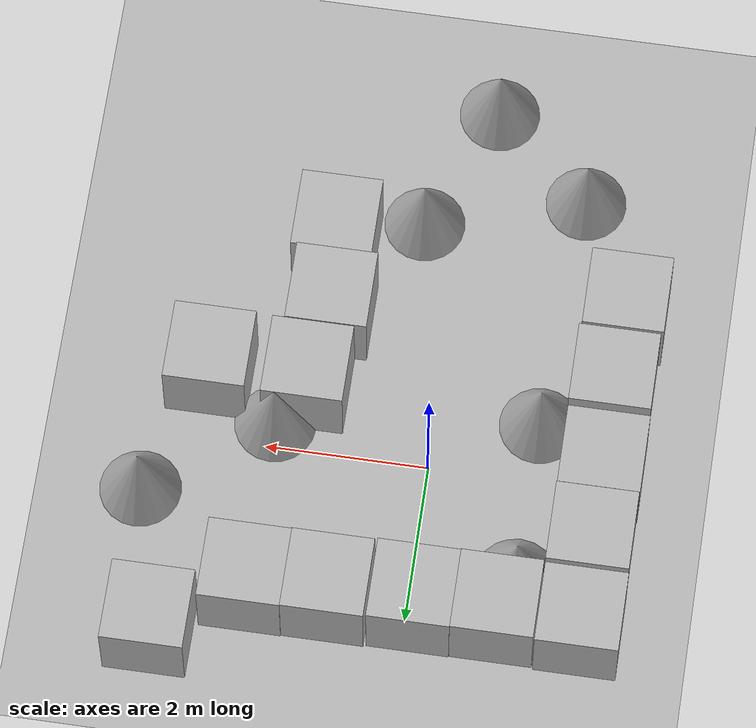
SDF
<sdf version="1.10">
 <world name="empty">
  <physics name="1ms" type="ignored">
   <max_step_size>0.001</max_step_size>
   <real_time_factor>1</real_time_factor>
   <real_time_update_rate>1000</real_time_update_rate>
  </physics>
  <gravity>0 0 -9.8000000000000007</gravity>
  <scene>
   <ambient>0.400000006 0.400000006 0.400000006 1</ambient>
   <background>0.699999988 0.699999988 0.699999988 1</background>
   <shadows>true</shadows>
  </scene>
  <magnetic_field>5.5644999999999998e-06 2.2875799999999999e-05 -4.2388400000000002e-05</magnetic_field>
  <atmosphere type="adiabatic"/>
  <model name="ground_plane">
   <static>true</static>
   <link name="link">
    <collision name="collision">
     <geometry><plane><normal>0 0 1</normal><size>100 100</size></plane></geometry>
     <surface><friction><ode><mu>100</mu><mu2>50</mu2></ode></friction></surface>
    </collision>
    <visual name="visual">
     <cast_shadows>false</cast_shadows>
     <geometry><plane><normal>0 0 1</normal><size>100 100</size></plane></geometry>
     <material>
      <ambient>0.300000012 0.300000012 0.300000012 1</ambient>
      <diffuse>0.699999988 0.699999988 0.699999988 1</diffuse>
      <specular>0.00999999978 0.00999999978 0.00999999978 1</specular>
     </material>
    </visual>
    <inertial>
     <mass>1</mass>
     <inertia><ixx>1</ixx><ixy>0</ixy><ixz>0</ixz><iyy>1</iyy><iyz>0</iyz><izz>1</izz></inertia>
    </inertial>
   </link>
  </model>
  <model name="box">
   <pose>1.9470620416377047 1.9083977872669315 0.49999999019526092 -7.6748563532494908e-13 1.957978881315056e-08 -2.7964924233082882e-08</pose>
   <link name="box_link">
    <inertial>
     <inertia><ixx>0.16666</ixx><ixy>0</ixy><ixz>0</ixz><iyy>0.16666</iyy><iyz>0</iyz><izz>0.16666</izz></inertia>
     <mass>1</mass>
    </inertial>
    <collision name="box_collision"><geometry><box><size>1 1 1</size></box></geometry></collision>
    <visual name="box_visual">
     <geometry><box><size>1 1 1</size></box></geometry>
     <material>
      <ambient>0.300000012 0.300000012 0.300000012 1</ambient>
      <diffuse>0.699999988 0.699999988 0.699999988 1</diffuse>
      <specular>1 1 1 1</specular>
     </material>
    </visual>
   </link>
   <static>false</static>
  </model>
  <model name="box_0">
   <pose>0.94706328292442177 1.9004171926882785 0.49999999019963692 2.2818806100685539e-13 -1.3089409870604124e-08 -4.0080310146236989e-07</pose>
   <link name="box_link">
    <inertial>
     <inertia><ixx>0.16666</ixx><ixy>0</ixy><ixz>0</ixz><iyy>0.16666</iyy><iyz>0</iyz><izz>0.16666</izz></inertia>
     <mass>1</mass>
    </inertial>
    <collision name="box_collision"><geometry><box><size>1 1 1</size></box></geometry></collision>
    <visual name="box_visual">
     <geometry><box><size>1 1 1</size></box></geometry>
     <material>
      <ambient>0.300000012 0.300000012 0.300000012 1</ambient>
      <diffuse>0.699999988 0.699999988 0.699999988 1</diffuse>
      <specular>1 1 1 1</specular>
     </material>
    </visual>
   </link>
   <static>false</static>
  </model>
  <model name="box_0_1">
   <pose>-0.083308255837100761 1.8850006325275634 0.5000010770224057 -7.3977714885779482e-07 3.4692992254144054e-06 -0.0004425430670112016</pose>
   <link name="box_link">
    <inertial>
     <inertia><ixx>0.16666</ixx><ixy>0</ixy><ixz>0</ixz><iyy>0.16666</iyy><iyz>0</iyz><izz>0.16666</izz></inertia>
     <mass>1</mass>
    </inertial>
    <collision name="box_collision"><geometry><box><size>1 1 1</size></box></geometry></collision>
    <visual name="box_visual">
     <geometry><box><size>1 1 1</size></box></geometry>
     <material>
      <ambient>0.300000012 0.300000012 0.300000012 1</ambient>
      <diffuse>0.699999988 0.699999988 0.699999988 1</diffuse>
      <specular>1 1 1 1</specular>
     </material>
    </visual>
   </link>
   <static>false</static>
  </model>
  <model name="box_0_2">
   <pose>-1.0807945892168809 1.8770412806555452 0.49999823208800886 7.0164467157600996e-07 1.6229859852118832e-06 0.00040387001487703886</pose>
   <link name="box_link">
    <inertial>
     <inertia><ixx>0.16666</ixx><ixy>0</ixy><ixz>0</ixz><iyy>0.16666</iyy><iyz>0</iyz><izz>0.16666</izz></inertia>
     <mass>1</mass>
    </inertial>
    <collision name="box_collision"><geometry><box><size>1 1 1</size></box></geometry></collision>
    <visual name="box_visual">
     <geometry><box><size>1 1 1</size></box></geometry>
     <material>
      <ambient>0.300000012 0.300000012 0.300000012 1</ambient>
      <diffuse>0.699999988 0.699999988 0.699999988 1</diffuse>
      <specular>1 1 1 1</specular>
     </material>
    </visual>
   </link>
   <static>false</static>
  </model>
  <model name="box_0_3">
   <pose>-2.0957638030660584 1.8978953767955695 0.49999590314331388 3.4806756533580993e-06 -2.6801095006249614e-06 0.00014312617384030406</pose>
   <link name="box_link">
    <inertial>
     <inertia><ixx>0.16666</ixx><ixy>0</ixy><ixz>0</ixz><iyy>0.16666</iyy><iyz>0</iyz><izz>0.16666</izz></inertia>
     <mass>1</mass>
    </inertial>
    <collision name="box_collision"><geometry><box><size>1 1 1</size></box></geometry></collision>
    <visual name="box_visual">
     <geometry><box><size>1 1 1</size></box></geometry>
     <material>
      <ambient>0.300000012 0.300000012 0.300000012 1</ambient>
      <diffuse>0.699999988 0.699999988 0.699999988 1</diffuse>
      <specular>1 1 1 1</specular>
     </material>
    </visual>
   </link>
   <static>false</static>
  </model>
  <model name="box_0_4">
   <pose>-2.0894026668519636 0.84930260917792488 0.49999960425859541 6.8923797746138049e-06 -2.8882341532963462e-06 0.00068682725494896731</pose>
   <link name="box_link">
    <inertial>
     <inertia><ixx>0.16666</ixx><ixy>0</ixy><ixz>0</ixz><iyy>0.16666</iyy><iyz>0</iyz><izz>0.16666</izz></inertia>
     <mass>1</mass>
    </inertial>
    <collision name="box_collision"><geometry><box><size>1 1 1</size></box></geometry></collision>
    <visual name="box_visual">
     <geometry><box><size>1 1 1</size></box></geometry>
     <material>
      <ambient>0.300000012 0.300000012 0.300000012 1</ambient>
      <diffuse>0.699999988 0.699999988 0.699999988 1</diffuse>
      <specular>1 1 1 1</specular>
     </material>
    </visual>
   </link>
   <static>false</static>
  </model>
  <model name="box_0_5">
   <pose>-2.0971833438105598 -0.15101455284250814 0.49999833741607125 -1.2260317838951203e-06 -1.2483642187905615e-06 0.00011108122047552772</pose>
   <link name="box_link">
    <inertial>
     <inertia><ixx>0.16666</ixx><ixy>0</ixy><ixz>0</ixz><iyy>0.16666</iyy><iyz>0</iyz><izz>0.16666</izz></inertia>
     <mass>1</mass>
    </inertial>
    <collision name="box_collision"><geometry><box><size>1 1 1</size></box></geometry></collision>
    <visual name="box_visual">
     <geometry><box><size>1 1 1</size></box></geometry>
     <material>
      <ambient>0.300000012 0.300000012 0.300000012 1</ambient>
      <diffuse>0.699999988 0.699999988 0.699999988 1</diffuse>
      <specular>1 1 1 1</specular>
     </material>
    </visual>
   </link>
   <static>false</static>
  </model>
  <model name="box_0_6">
   <pose>-2.0894589837300273 -1.2395765489022368 0.49999897772391327 2.4170785353987686e-06 -2.5445037550378489e-06 -2.8647462368752818e-05</pose>
   <link name="box_link">
    <inertial>
     <inertia><ixx>0.16666</ixx><ixy>0</ixy><ixz>0</ixz><iyy>0.16666</iyy><iyz>0</iyz><izz>0.16666</izz></inertia>
     <mass>1</mass>
    </inertial>
    <collision name="box_collision"><geometry><box><size>1 1 1</size></box></geometry></collision>
    <visual name="box_visual">
     <geometry><box><size>1 1 1</size></box></geometry>
     <material>
      <ambient>0.300000012 0.300000012 0.300000012 1</ambient>
      <diffuse>0.699999988 0.699999988 0.699999988 1</diffuse>
      <specular>1 1 1 1</specular>
     </material>
    </visual>
   </link>
   <static>false</static>
  </model>
  <model name="box_0_7">
   <pose>-2.1207766249328466 -2.2669821767770721 0.49999933952550774 2.2474788835131657e-13 1.3013579206822501e-06 -4.9935698614234015e-07</pose>
   <link name="box_link">
    <inertial>
     <inertia><ixx>0.16666</ixx><ixy>0</ixy><ixz>0</ixz><iyy>0.16666</iyy><iyz>0</iyz><izz>0.16666</izz></inertia>
     <mass>1</mass>
    </inertial>
    <collision name="box_collision"><geometry><box><size>1 1 1</size></box></geometry></collision>
    <visual name="box_visual">
     <geometry><box><size>1 1 1</size></box></geometry>
     <material>
      <ambient>0.300000012 0.300000012 0.300000012 1</ambient>
      <diffuse>0.699999988 0.699999988 0.699999988 1</diffuse>
      <specular>1 1 1 1</specular>
     </material>
    </visual>
   </link>
   <static>false</static>
  </model>
  <model name="box_0_8">
   <pose>1.5322088834407077 -2.8012241526001835 0.49999999048194999 1.9028322558452561e-08 4.5360682034041025e-09 -3.9630703251955208e-07</pose>
   <link name="box_link">
    <inertial>
     <inertia><ixx>0.16666</ixx><ixy>0</ixy><ixz>0</ixz><iyy>0.16666</iyy><iyz>0</iyz><izz>0.16666</izz></inertia>
     <mass>1</mass>
    </inertial>
    <collision name="box_collision"><geometry><box><size>1 1 1</size></box></geometry></collision>
    <visual name="box_visual">
     <geometry><box><size>1 1 1</size></box></geometry>
     <material>
      <ambient>0.300000012 0.300000012 0.300000012 1</ambient>
      <diffuse>0.699999988 0.699999988 0.699999988 1</diffuse>
      <specular>1 1 1 1</specular>
     </material>
    </visual>
   </link>
   <static>false</static>
  </model>
  <model name="box_0_9">
   <pose>1.4530520356905383 -1.8178949726637947 0.49999999019962482 -1.9598602834209535e-08 -6.8109631969215144e-13 -3.34414450942509e-07</pose>
   <link name="box_link">
    <inertial>
     <inertia><ixx>0.16666</ixx><ixy>0</ixy><ixz>0</ixz><iyy>0.16666</iyy><iyz>0</iyz><izz>0.16666</izz></inertia>
     <mass>1</mass>
    </inertial>
    <collision name="box_collision"><geometry><box><size>1 1 1</size></box></geometry></collision>
    <visual name="box_visual">
     <geometry><box><size>1 1 1</size></box></geometry>
     <material>
      <ambient>0.300000012 0.300000012 0.300000012 1</ambient>
      <diffuse>0.699999988 0.699999988 0.699999988 1</diffuse>
      <specular>1 1 1 1</specular>
     </material>
    </visual>
   </link>
   <static>false</static>
  </model>
  <model name="box_0_10">
   <pose>1.5985841421690843 -0.80767509050644282 0.50018357781054601 5.7291795943611035e-07 -0.00036800886953269857 -0.00043504004990695279</pose>
   <link name="box_link">
    <inertial>
     <inertia><ixx>0.16666</ixx><ixy>0</ixy><ixz>0</ixz><iyy>0.16666</iyy><iyz>0</iyz><izz>0.16666</izz></inertia>
     <mass>1</mass>
    </inertial>
    <collision name="box_collision"><geometry><box><size>1 1 1</size></box></geometry></collision>
    <visual name="box_visual">
     <geometry><box><size>1 1 1</size></box></geometry>
     <material>
      <ambient>0.300000012 0.300000012 0.300000012 1</ambient>
      <diffuse>0.699999988 0.699999988 0.699999988 1</diffuse>
      <specular>1 1 1 1</specular>
     </material>
    </visual>
   </link>
   <static>false</static>
  </model>
  <model name="box_0_11">
   <pose>2.7971674154931425 -0.83301335714293845 0.50003775008166906 7.6816495231027401e-05 9.1785879502918003e-07 -0.00079893606256619255</pose>
   <link name="box_link">
    <inertial>
     <inertia><ixx>0.16666</ixx><ixy>0</ixy><ixz>0</ixz><iyy>0.16666</iyy><iyz>0</iyz><izz>0.16666</izz></inertia>
     <mass>1</mass>
    </inertial>
    <collision name="box_collision"><geometry><box><size>1 1 1</size></box></geometry></collision>
    <visual name="box_visual">
     <geometry><box><size>1 1 1</size></box></geometry>
     <material>
      <ambient>0.300000012 0.300000012 0.300000012 1</ambient>
      <diffuse>0.699999988 0.699999988 0.699999988 1</diffuse>
      <specular>1 1 1 1</specular>
     </material>
    </visual>
   </link>
   <static>false</static>
  </model>
  <model name="box_0_12">
   <pose>2.9988491255442522 2.6006627357649532 0.49999933294940546 2.2364049058151887e-13 1.3156605243827531e-06 -4.008030033565279e-07</pose>
   <link name="box_link">
    <inertial>
     <inertia><ixx>0.16666</ixx><ixy>0</ixy><ixz>0</ixz><iyy>0.16666</iyy><iyz>0</iyz><izz>0.16666</izz></inertia>
     <mass>1</mass>
    </inertial>
    <collision name="box_collision"><geometry><box><size>1 1 1</size></box></geometry></collision>
    <visual name="box_visual">
     <geometry><box><size>1 1 1</size></box></geometry>
     <material>
      <ambient>0.300000012 0.300000012 0.300000012 1</ambient>
      <diffuse>0.699999988 0.699999988 0.699999988 1</diffuse>
      <specular>1 1 1 1</specular>
     </material>
    </visual>
   </link>
   <static>false</static>
  </model>
  <model name="cone">
   <pose>3.4178558014167604 0.75917452707663236 0.49999999993296756 5.2544955715744045e-17 -7.7132841039426759e-10 -1.4216828099825083e-22</pose>
   <link name="cone_link">
    <inertial>
     <inertia>
      <ixx>0.074999999999999997</ixx>
      <ixy>0</ixy>
      <ixz>0</ixz>
      <iyy>0.074999999999999997</iyy>
      <iyz>0</iyz>
      <izz>0.074999999999999997</izz>
     </inertia>
     <mass>1</mass>
    </inertial>
    <collision name="cone_collision">
     <geometry><cone><radius>0.5</radius><length>1</length></cone></geometry>
    </collision>
    <visual name="cone_visual">
     <geometry><cone><radius>0.5</radius><length>1</length></cone></geometry>
     <material>
      <ambient>0.300000012 0.300000012 0.300000012 1</ambient>
      <diffuse>0.699999988 0.699999988 0.699999988 1</diffuse>
      <specular>1 1 1 1</specular>
     </material>
    </visual>
   </link>
   <static>false</static>
  </model>
  <model name="cone_1">
   <pose>0.50389380229463754 -3.2486368029081936 0.4999999999393625 4.0324799786681062e-11 1.6174331192977138e-10 1.9726167712178548e-17</pose>
   <link name="cone_link">
    <inertial>
     <inertia>
      <ixx>0.074999999999999997</ixx>
      <ixy>0</ixy>
      <ixz>0</ixz>
      <iyy>0.074999999999999997</iyy>
      <iyz>0</iyz>
      <izz>0.074999999999999997</izz>
     </inertia>
     <mass>1</mass>
    </inertial>
    <collision name="cone_collision">
     <geometry><cone><radius>0.5</radius><length>1</length></cone></geometry>
    </collision>
    <visual name="cone_visual">
     <geometry><cone><radius>0.5</radius><length>1</length></cone></geometry>
     <material>
      <ambient>0.300000012 0.300000012 0.300000012 1</ambient>
      <diffuse>0.699999988 0.699999988 0.699999988 1</diffuse>
      <specular>1 1 1 1</specular>
     </material>
    </visual>
   </link>
   <static>false</static>
  </model>
  <model name="cone_2">
   <pose>-1.2681564716848484 -0.75768752305883513 0.49999960005900285 -5.8041894602148784e-07 1.7729943356774129e-07 7.6187822253122369e-05</pose>
   <link name="cone_link">
    <inertial>
     <inertia>
      <ixx>0.074999999999999997</ixx>
      <ixy>0</ixy>
      <ixz>0</ixz>
      <iyy>0.074999999999999997</iyy>
      <iyz>0</iyz>
      <izz>0.074999999999999997</izz>
     </inertia>
     <mass>1</mass>
    </inertial>
    <collision name="cone_collision">
     <geometry><cone><radius>0.5</radius><length>1</length></cone></geometry>
    </collision>
    <visual name="cone_visual">
     <geometry><cone><radius>0.5</radius><length>1</length></cone></geometry>
     <material>
      <ambient>0.300000012 0.300000012 0.300000012 1</ambient>
      <diffuse>0.699999988 0.699999988 0.699999988 1</diffuse>
      <specular>1 1 1 1</specular>
     </material>
    </visual>
   </link>
   <static>false</static>
  </model>
  <model name="cone_3">
   <pose>-1.2447285144613838 1.2511056255764588 0.50000013844216007 1.3829539612531005e-06 -2.9420925386150488e-06 0.00039279761823189738</pose>
   <link name="cone_link">
    <inertial>
     <inertia>
      <ixx>0.074999999999999997</ixx>
      <ixy>0</ixy>
      <ixz>0</ixz>
      <iyy>0.074999999999999997</iyy>
      <iyz>0</iyz>
      <izz>0.074999999999999997</izz>
     </inertia>
     <mass>1</mass>
    </inertial>
    <collision name="cone_collision">
     <geometry><cone><radius>0.5</radius><length>1</length></cone></geometry>
    </collision>
    <visual name="cone_visual">
     <geometry><cone><radius>0.5</radius><length>1</length></cone></geometry>
     <material>
      <ambient>0.300000012 0.300000012 0.300000012 1</ambient>
      <diffuse>0.699999988 0.699999988 0.699999988 1</diffuse>
      <specular>1 1 1 1</specular>
     </material>
    </visual>
   </link>
   <static>false</static>
  </model>
  <model name="cone_4">
   <pose>1.9271767839736611 -0.31557798102927248 0.50014551349669389 -5.624592121019231e-05 0.00031541674378072885 -0.00095195212983823169</pose>
   <link name="cone_link">
    <inertial>
     <inertia>
      <ixx>0.074999999999999997</ixx>
      <ixy>0</ixy>
      <ixz>0</ixz>
      <iyy>0.074999999999999997</iyy>
      <iyz>0</iyz>
      <izz>0.074999999999999997</izz>
     </inertia>
     <mass>1</mass>
    </inertial>
    <collision name="cone_collision">
     <geometry><cone><radius>0.5</radius><length>1</length></cone></geometry>
    </collision>
    <visual name="cone_visual">
     <geometry><cone><radius>0.5</radius><length>1</length></cone></geometry>
     <material>
      <ambient>0.300000012 0.300000012 0.300000012 1</ambient>
      <diffuse>0.699999988 0.699999988 0.699999988 1</diffuse>
      <specular>1 1 1 1</specular>
     </material>
    </visual>
   </link>
   <static>false</static>
  </model>
  <model name="cone_5">
   <pose>-1.4377016460751282 -3.8119804953465537 0.4999999999393625 4.0324799786880833e-11 1.6174331192143919e-10 1.9726058270668895e-17</pose>
   <link name="cone_link">
    <inertial>
     <inertia>
      <ixx>0.074999999999999997</ixx>
      <ixy>0</ixy>
      <ixz>0</ixz>
      <iyy>0.074999999999999997</iyy>
      <iyz>0</iyz>
      <izz>0.074999999999999997</izz>
     </inertia>
     <mass>1</mass>
    </inertial>
    <collision name="cone_collision">
     <geometry><cone><radius>0.5</radius><length>1</length></cone></geometry>
    </collision>
    <visual name="cone_visual">
     <geometry><cone><radius>0.5</radius><length>1</length></cone></geometry>
     <material>
      <ambient>0.300000012 0.300000012 0.300000012 1</ambient>
      <diffuse>0.699999988 0.699999988 0.699999988 1</diffuse>
      <specular>1 1 1 1</specular>
     </material>
    </visual>
   </link>
   <static>false</static>
  </model>
  <model name="cone_6">
   <pose>-0.21180704131095851 -4.8824537626438129 0.4999999999393625 4.0324799786741033e-11 1.6174331192143547e-10 1.9726250439890099e-17</pose>
   <link name="cone_link">
    <inertial>
     <inertia>
      <ixx>0.074999999999999997</ixx>
      <ixy>0</ixy>
      <ixz>0</ixz>
      <iyy>0.074999999999999997</iyy>
      <iyz>0</iyz>
      <izz>0.074999999999999997</izz>
     </inertia>
     <mass>1</mass>
    </inertial>
    <collision name="cone_collision">
     <geometry><cone><radius>0.5</radius><length>1</length></cone></geometry>
    </collision>
    <visual name="cone_visual">
     <geometry><cone><radius>0.5</radius><length>1</length></cone></geometry>
     <material>
      <ambient>0.300000012 0.300000012 0.300000012 1</ambient>
      <diffuse>0.699999988 0.699999988 0.699999988 1</diffuse>
      <specular>1 1 1 1</specular>
     </material>
    </visual>
   </link>
   <static>false</static>
  </model>
  <light name="sun" type="directional">
   <pose>0 0 10 0 0 0</pose>
   <intensity>1</intensity>
   <direction>-0.5 0.10000000000000001 -0.90000000000000002</direction>
   <diffuse>0.800000012 0.800000012 0.800000012 1</diffuse>
   <specular>0.200000003 0.200000003 0.200000003 1</specular>
   <attenuation>
    <range>1000</range>
    <linear>0.01</linear>
    <constant>0.90000000000000002</constant>
    <quadratic>0.001</quadratic>
   </attenuation>
   <spot><inner_angle>0</inner_angle><outer_angle>0</outer_angle><falloff>0</falloff></spot>
  </light>
 </world>
</sdf>
